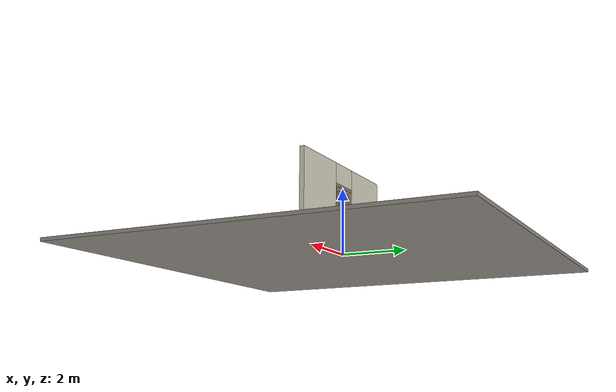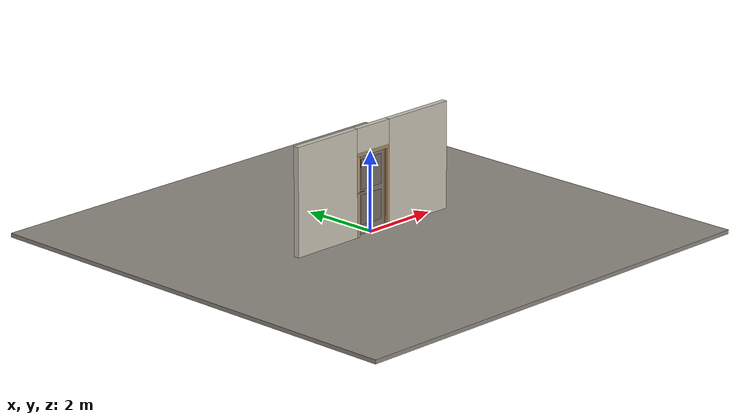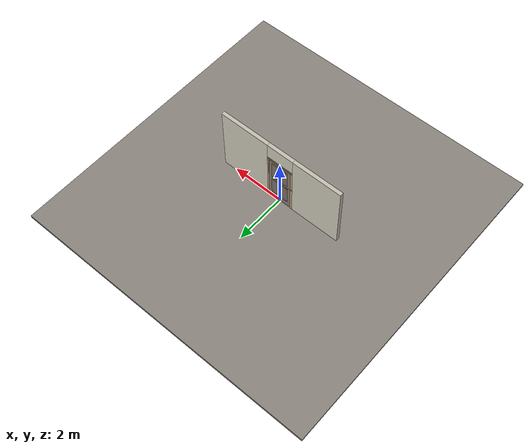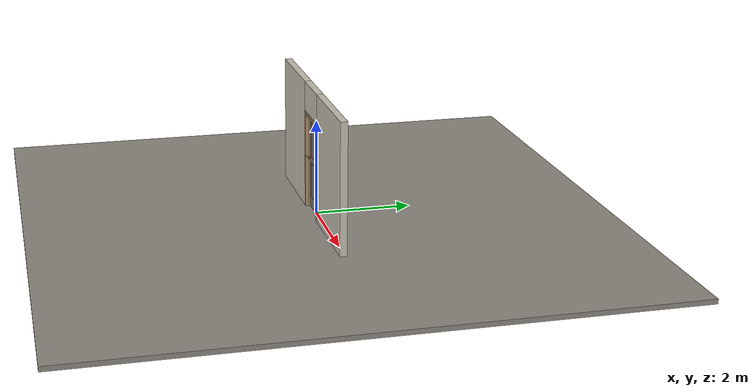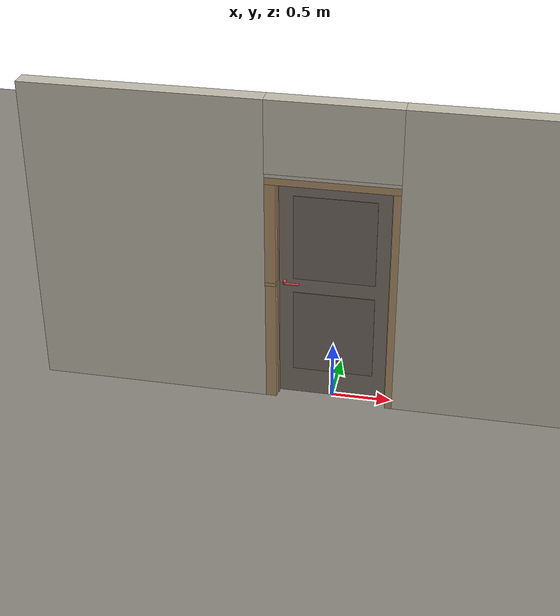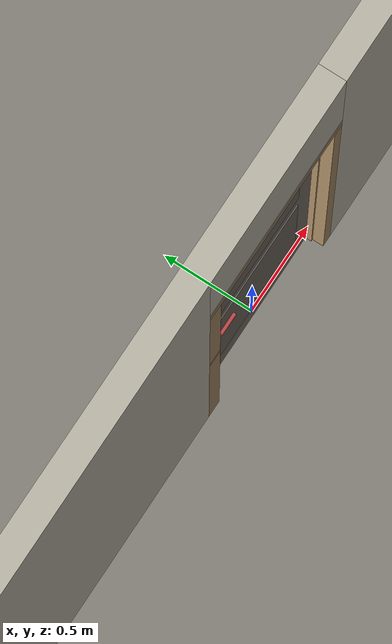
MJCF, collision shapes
<?xml version="1.0" ?>
<mujoco model="db0237_swing_single_full">
  <compiler angle="radian" meshdir="../../hardware" texturedir="../../textures" autolimits="true" inertiafromgeom="false"/>
  <option timestep="0.002" integrator="implicitfast" cone="elliptic" impratio="10" noslip_iterations="3">
    <flag multiccd="enable"/>
  </option>
  <size memory="16M"/>
  <default>
    <geom condim="4" solref="0.005 1" solimp="0.95 0.99 0.001"/>
    <joint solreflimit="0.005 1" solimplimit="0.95 0.99 0.001"/>
    <tendon solreflimit="0.005 1"/>
    <equality solref="0.002 1"/>
  </default>
  <visual>
    <headlight ambient="0.4 0.4 0.4" diffuse="0.7 0.7 0.7" specular="0.2 0.2 0.2"/>
    <quality shadowsize="4096"/>
    <map znear="0.01" zfar="60"/>
  </visual>
  <asset>
    <mesh name="lever_9f02b544cf" file="lever_9f02b544cf.obj"/>
    <mesh name="peephole_f829311a59" file="peephole_f829311a59.obj"/>
    <mesh name="strap_hinge_78d1bbb966" file="strap_hinge_78d1bbb966.obj"/>
    <material name="mat_floor" rgba="0.55 0.53 0.5 1" specular="0.2" shininess="0.15" reflectance="0"/>
    <material name="mat_wall" rgba="0.78 0.76 0.7 1" specular="0.2" shininess="0.1" reflectance="0"/>
    <material name="mat_leaf" rgba="0.5 0.46 0.425 1" specular="0.2" shininess="0.15" reflectance="0"/>
    <material name="mat_leaf_panel" rgba="0.46 0.423 0.391 1" specular="0.2" shininess="0.15" reflectance="0"/>
    <material name="mat_hinge" rgba="0.65 0.66 0.68 1" specular="0.74" shininess="0.5" reflectance="0.36"/>
    <material name="mat_op_brass_antique" rgba="0.55 0.42 0.22 1" specular="0.74" shininess="0.45" reflectance="0.36"/>
    <material name="mat_trim" rgba="0.85 0.66 0.3 1" specular="0.8" shininess="0.75" reflectance="0.4"/>
    <material name="mat_bolt" rgba="0.75 0.76 0.77 1" specular="0.8" shininess="0.65" reflectance="0.4"/>
    <material name="mat_frame" rgba="0.7 0.58 0.42 1" specular="0.2" shininess="0.5" reflectance="0"/>
    <material name="mat_peephole" rgba="0.85 0.66 0.3 1" specular="0.8" shininess="0.75" reflectance="0.4"/>
    <texture name="skybox" type="skybox" builtin="gradient" rgb1="0.6 0.7 0.85" rgb2="0.9 0.92 0.95" width="256" height="256"/>
  </asset>
  <worldbody>
    <light name="sun" pos="1.5 -2.5 4" dir="-0.3 0.5 -0.8" directional="true" diffuse="0.8 0.8 0.8" specular="0.3 0.3 0.3" castshadow="true"/>
    <light name="fill" pos="-1.5 2.5 3" dir="0.3 -0.5 -0.7" directional="true" diffuse="0.35 0.35 0.4" castshadow="false"/>
    <camera name="robot_view" pos="0 -2.541625 1.698475" xyaxes="1 0 0 0 0.26963 0.962964" fovy="52"/>
    <camera name="far_view" pos="0 2.454625 1.698475" xyaxes="-1 0 0 0 -0.26963 0.962964" fovy="52"/>
    <camera name="iso" pos="-1.898575 -2.141925 2.098175" xyaxes="0.741536 -0.670913 0 0.242917 0.268487 0.932151" fovy="46"/>
    <camera name="detail_handle" pos="-0.1215 -0.877 1.38" xyaxes="0.97561 0.219512 0 -0.070934 0.315262 0.94635" fovy="38"/>
    <geom name="floor" type="box" size="6 6 0.05" pos="0 0 -0.05" material="mat_floor" group="0" contype="1" conaffinity="1" friction="0.8 0.005 0.0001" density="2400"/>
    <geom name="wall_left" type="box" size="0.97475 0.0725 1.35" pos="-1.52525 -0.0435 1.35" material="mat_wall" group="0" contype="1" conaffinity="1" friction="0.6 0.005 0.0001" density="800"/>
    <geom name="wall_right" type="box" size="0.98975 0.0725 1.35" pos="1.51025 -0.0435 1.35" material="mat_wall" group="0" contype="1" conaffinity="1" friction="0.6 0.005 0.0001" density="800"/>
    <geom name="wall_header" type="box" size="0.5355 0.0725 0.306" pos="-0.015 -0.0435 2.394" material="mat_wall" group="0" contype="1" conaffinity="1" friction="0.6 0.005 0.0001" density="800"/>
    <geom name="hinge_pintle_0" type="cylinder" size="0.008 0.02" pos="0.4575 0.029 0.133" material="mat_hinge" group="1" contype="0" conaffinity="0" density="7850"/>
    <geom name="hinge_pintle_1" type="cylinder" size="0.008 0.02" pos="0.4575 0.029 1.818" material="mat_hinge" group="1" contype="0" conaffinity="0" density="7850"/>
    <geom name="jamb_hinge" type="box" size="0.03 0.0725 0.999" pos="0.4905 -0.0435 0.999" material="mat_frame" group="0" contype="1" conaffinity="1" friction="0.6 0.005 0.0001" density="750"/>
    <geom name="strike_1100_wall_n" type="box" size="0.045 0.05475 0.015" pos="-0.5055 -0.06125 1.1" material="mat_frame" group="0" contype="1" conaffinity="1" friction="0.6 0.005 0.0001" density="750"/>
    <geom name="strike_1100_wall_p" type="box" size="0.045 0.008 0.015" pos="-0.5055 0.0145 1.1" material="mat_frame" group="0" contype="1" conaffinity="1" friction="0.6 0.005 0.0001" density="750"/>
    <geom name="strike_1100_ramp" type="box" size="0.045 0.016771 0.015" pos="-0.508249 0.017375 1.1" quat="0.973249 0 0 0.229753" material="mat_frame" group="0" contype="1" conaffinity="1" friction="0.12 0.005 0.0001" density="750"/>
    <geom name="strike_1100_back" type="box" size="0.036 0.0065 0.015" pos="-0.5145 0 1.1" material="mat_frame" group="0" contype="1" conaffinity="1" friction="0.6 0.005 0.0001" density="750"/>
    <geom name="jamb_strike_0" type="box" size="0.045 0.0725 0.5425" pos="-0.5055 -0.0435 0.5425" material="mat_frame" group="0" contype="1" conaffinity="1" friction="0.6 0.005 0.0001" density="750"/>
    <geom name="jamb_strike_1" type="box" size="0.045 0.0725 0.4415" pos="-0.5055 -0.0435 1.5565" material="mat_frame" group="0" contype="1" conaffinity="1" friction="0.6 0.005 0.0001" density="750"/>
    <geom name="jamb_head" type="box" size="0.5355 0.0725 0.03" pos="-0.015 -0.0435 2.028" material="mat_frame" group="0" contype="1" conaffinity="1" friction="0.6 0.005 0.0001" density="750"/>
    <geom name="head_stud" type="box" size="0.5355 0.0725 0.015" pos="-0.015 -0.0435 2.073" material="mat_wall" group="0" contype="1" conaffinity="1" friction="0.6 0.005 0.0001" density="500"/>
    <geom name="stop_hinge" type="box" size="0.0055 0.016 0.999" pos="0.455 -0.0385 0.999" material="mat_frame" group="0" contype="1" conaffinity="1" friction="0.6 0.005 0.0001" density="750"/>
    <geom name="stop_strike" type="box" size="0.0055 0.016 0.999" pos="-0.455 -0.0385 0.999" material="mat_frame" group="0" contype="1" conaffinity="1" friction="0.6 0.005 0.0001" density="750"/>
    <geom name="stop_head" type="box" size="0.4605 0.016 0.0055" pos="0 -0.0385 1.9925" material="mat_frame" group="0" contype="1" conaffinity="1" friction="0.6 0.005 0.0001" density="750"/>
    <geom name="hinge_pintle_0_strap_0" type="box" size="0.0064 0.02225 0.016" pos="0.4575 -0.00075 0.133" material="mat_hinge" group="1" contype="0" conaffinity="0" density="7850"/>
    <geom name="hinge_pintle_1_strap_0" type="box" size="0.0064 0.02225 0.016" pos="0.4575 -0.00075 1.818" material="mat_hinge" group="1" contype="0" conaffinity="0" density="7850"/>
    <site name="approach_point" pos="0 -1.5 0" quat="1 0 0 0" size="0.05" rgba="0.2 0.9 0.2 0.5" group="4"/>
    <site name="goal_point" pos="0 1.5 0" quat="1 0 0 0" size="0.05" rgba="0.2 0.9 0.2 0.5" group="4"/>
    <site name="door_plane_center" pos="0 0 0.999" quat="1 0 0 0" size="0.02" rgba="0.2 0.9 0.2 0.5" group="4"/>
    <body name="leaf" pos="0.4605 0 0">
      <inertial pos="-0.444573 0.001227 1.001797" mass="40.36247" quat="0.498652 0.501313 -0.498694 0.501334" diaginertia="2.890029998 14.008977852 16.88424144"/>
      <joint name="leaf_hinge" type="hinge" axis="0 0 -1" pos="-0.003 0.029 0" limited="true" range="0 1.745329" damping="0.300186" frictionloss="8.874844" armature="0.02"/>
      <geom name="leaf_slab" type="box" size="0.457 0.022 0.9925" pos="-0.46 0 1.0015" material="mat_leaf" group="0" contype="1" conaffinity="1" friction="0.45 0.005 0.0001" density="1"/>
      <geom name="leaf_panel_0_n" type="box" size="0.33646 0.003 0.37435" pos="-0.46 -0.025 0.6217" material="mat_leaf_panel" group="1" contype="0" conaffinity="0" density="1"/>
      <geom name="leaf_panel_0_p" type="box" size="0.33646 0.003 0.37435" pos="-0.46 0.025 0.6217" material="mat_leaf_panel" group="1" contype="0" conaffinity="0" density="1"/>
      <geom name="leaf_panel_1_n" type="box" size="0.33646 0.003 0.37435" pos="-0.46 -0.025 1.5004" material="mat_leaf_panel" group="1" contype="0" conaffinity="0" density="1"/>
      <geom name="leaf_panel_1_p" type="box" size="0.33646 0.003 0.37435" pos="-0.46 0.025 1.5004" material="mat_leaf_panel" group="1" contype="0" conaffinity="0" density="1"/>
      <geom name="hinge_strap_0" type="mesh" mesh="strap_hinge_78d1bbb966" pos="-0.003 0.025 0.159" quat="0 0 0 1" material="mat_hinge" group="1" contype="0" conaffinity="0" density="7850"/>
      <geom name="hinge_strap_eye_0" type="cylinder" size="0.011 0.012" pos="-0.003 0.029 0.159" material="mat_hinge" group="1" contype="0" conaffinity="0" density="7850"/>
      <geom name="hinge_strap_neck_0" type="box" size="0.012 0.006 0.006" pos="-0.003 0.027 0.159" material="mat_hinge" group="1" contype="0" conaffinity="0" density="7850"/>
      <geom name="hinge_strap_1" type="mesh" mesh="strap_hinge_78d1bbb966" pos="-0.003 0.025 1.844" quat="0 0 0 1" material="mat_hinge" group="1" contype="0" conaffinity="0" density="7850"/>
      <geom name="hinge_strap_eye_1" type="cylinder" size="0.011 0.012" pos="-0.003 0.029 1.844" material="mat_hinge" group="1" contype="0" conaffinity="0" density="7850"/>
      <geom name="hinge_strap_neck_1" type="box" size="0.012 0.006 0.006" pos="-0.003 0.027 1.844" material="mat_hinge" group="1" contype="0" conaffinity="0" density="7850"/>
      <geom name="leaf_latch_bolt_faceplate" type="box" size="0.0006 0.011 0.025" pos="-0.9164 0 1.1" material="mat_bolt" group="1" contype="0" conaffinity="0" density="8500"/>
      <geom name="peephole" type="mesh" mesh="peephole_f829311a59" pos="-0.46 -0.022 1.509" quat="0 0 -0.707107 0.707107" material="mat_peephole" group="2" contype="0" conaffinity="0" density="8500"/>
      <site name="leaf_edge_mid" pos="-0.917 0 0.9925" quat="1 0 0 0" size="0.02" rgba="0.2 0.9 0.2 0.5" group="4"/>
      <body name="leaf_handle" pos="-0.862 0 1.1">
        <inertial pos="0.028544 0 0" mass="0.978187" quat="0 0.707107 0.707107 0" diaginertia="0.001772047 0.003604455 0.005198299"/>
        <joint name="leaf_handle_hinge" type="hinge" axis="0 1 0" limited="true" range="0 0.96" damping="0.200551" frictionloss="0.046" stiffness="0.8" springref="-0.577217" armature="0.01"/>
        <geom name="leaf_handle_spindle" type="cylinder" size="0.006 0.03" pos="0 0 0" quat="0.707107 -0.707107 0 0" material="mat_op_brass_antique" group="1" contype="0" conaffinity="0" density="7850"/>
        <geom name="leaf_handle_lever_n" type="mesh" mesh="lever_9f02b544cf" pos="0 -0.022 0" quat="0 0 -0.707107 0.707107" material="mat_op_brass_antique" group="1" contype="0" conaffinity="0" density="3000"/>
        <geom name="leaf_handle_lever_col_n" type="capsule" size="0.0095 0.053" pos="0.0625 -0.077 0" quat="0.707107 0 0.707107 0" material="mat_op_brass_antique" group="3" contype="1" conaffinity="1" rgba="0.8 0.3 0.3 0.25" friction="0.7 0.01 0.0001" density="3000"/>
        <geom name="leaf_handle_hub_col_n" type="cylinder" size="0.012 0.022" pos="0 -0.052 0" quat="0.707107 -0.707107 0 0" material="mat_op_brass_antique" group="3" contype="1" conaffinity="1" rgba="0.8 0.3 0.3 0.25" friction="0.6 0.005 0.0001" density="3000"/>
        <geom name="leaf_handle_lever_p" type="mesh" mesh="lever_9f02b544cf" pos="0 0.022 0" quat="0 0 0.707107 0.707107" material="mat_op_brass_antique" group="1" contype="0" conaffinity="0" density="3000"/>
        <geom name="leaf_handle_lever_col_p" type="capsule" size="0.0095 0.053" pos="0.0625 0.077 0" quat="0.707107 0 0.707107 0" material="mat_op_brass_antique" group="3" contype="1" conaffinity="1" rgba="0.8 0.3 0.3 0.25" friction="0.7 0.01 0.0001" density="3000"/>
        <geom name="leaf_handle_hub_col_p" type="cylinder" size="0.012 0.022" pos="0 0.052 0" quat="0.707107 -0.707107 0 0" material="mat_op_brass_antique" group="3" contype="1" conaffinity="1" rgba="0.8 0.3 0.3 0.25" friction="0.6 0.005 0.0001" density="3000"/>
        <site name="leaf_handle_grip_n" pos="0.1 -0.077 0" quat="1 0 0 0" size="0.012" rgba="0.2 0.9 0.2 0.5" group="4"/>
        <site name="leaf_handle_grip_p" pos="0.1 0.077 0" quat="1 0 0 0" size="0.012" rgba="0.2 0.9 0.2 0.5" group="4"/>
      </body>
      <body name="leaf_latch_bolt" pos="-0.917 0 1.1">
        <inertial pos="0.008 0 0" mass="0.027149" quat="0 0 -0.707107 0.707107" diaginertia="0.000000328 0.000003943 0.000003943"/>
        <joint name="leaf_latch_bolt_slide" type="slide" axis="1 0 0" limited="true" range="0 0.014" damping="2" frictionloss="0.3" stiffness="400" springref="-0.01" armature="0.1"/>
        <geom name="leaf_latch_bolt_capsule" type="capsule" size="0.005 0.017" pos="0.008 0 0" quat="0.707107 0 -0.707107 0" material="mat_bolt" group="0" contype="1" conaffinity="1" friction="0.2 0.005 0.0001" density="8500"/>
      </body>
    </body>
  </worldbody>
  <tendon>
    <fixed name="leaf_latch_bolt_coupling" limited="true" range="0 10">
      <joint joint="leaf_latch_bolt_slide" coef="1"/>
      <joint joint="leaf_handle_hinge" coef="-0.018421"/>
    </fixed>
  </tendon>
  <sensor>
    <jointpos name="leaf_hinge_pos" joint="leaf_hinge"/>
    <jointvel name="leaf_hinge_vel" joint="leaf_hinge"/>
    <jointpos name="leaf_handle_hinge_pos" joint="leaf_handle_hinge"/>
    <jointvel name="leaf_handle_hinge_vel" joint="leaf_handle_hinge"/>
    <jointpos name="leaf_latch_bolt_slide_pos" joint="leaf_latch_bolt_slide"/>
    <jointvel name="leaf_latch_bolt_slide_vel" joint="leaf_latch_bolt_slide"/>
  </sensor>
</mujoco>
